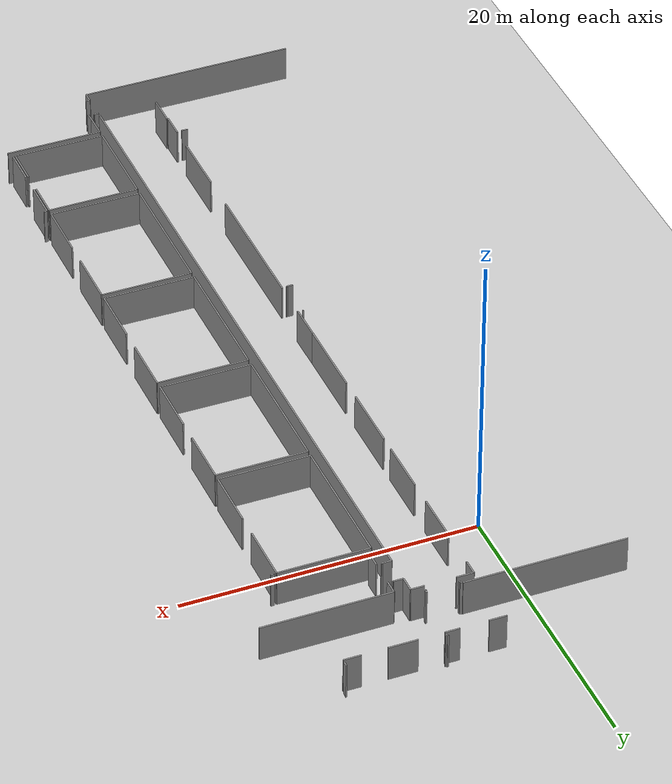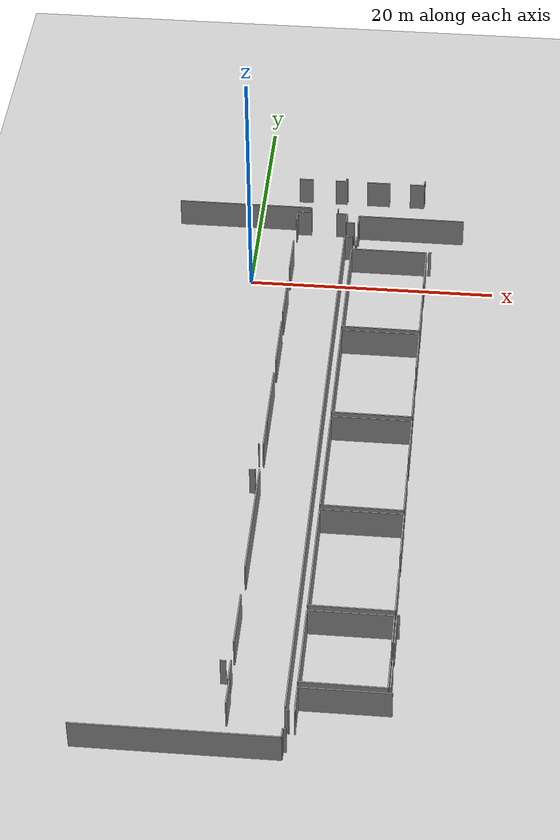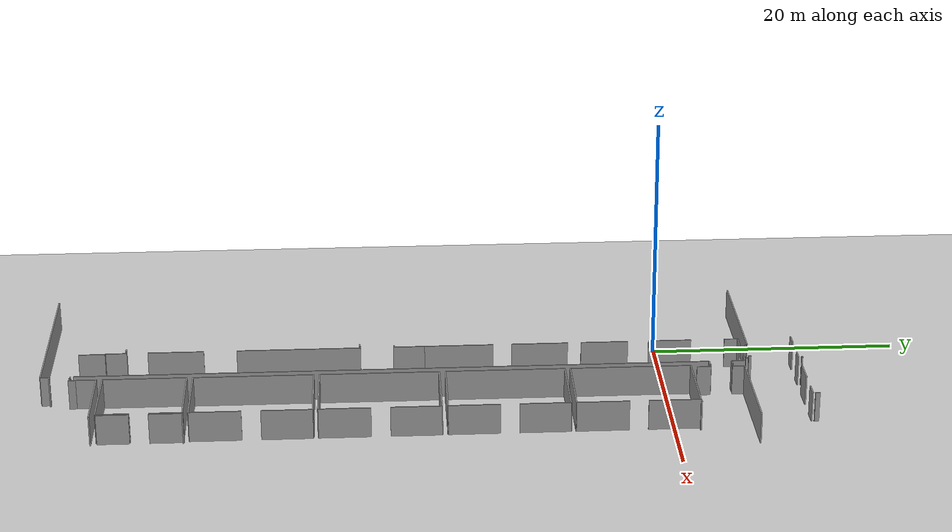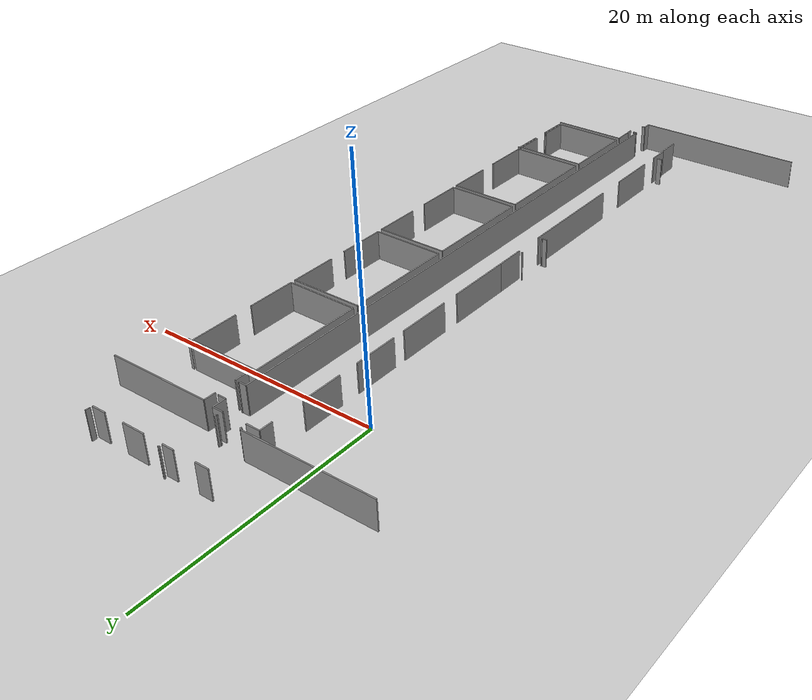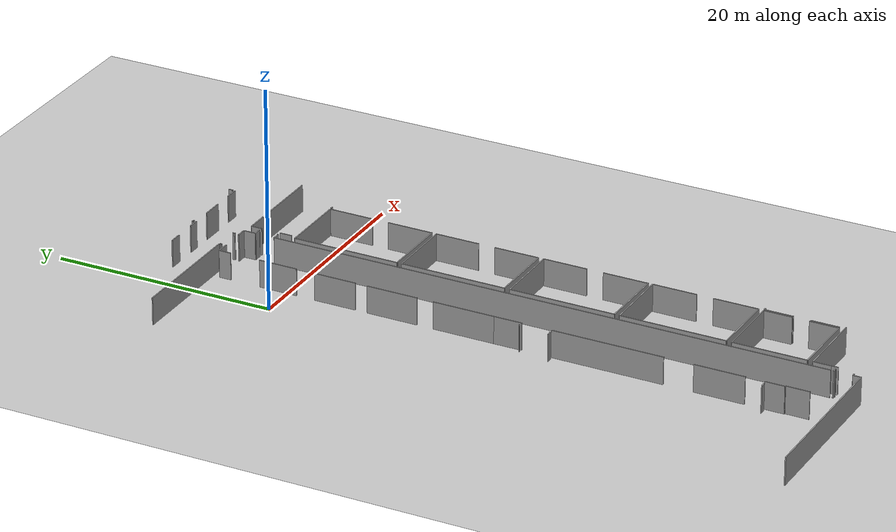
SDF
<sdf version="1.6">
 <world name="default">
  <model name="ground_plane">
   <static>1</static>
   <link name="link">
    <collision name="collision">
     <geometry><plane><normal>0 0 1</normal><size>100 100</size></plane></geometry>
     <surface><friction><ode><mu>100</mu><mu2>50</mu2></ode></friction></surface>
    </collision>
    <visual name="visual">
     <cast_shadows>0</cast_shadows>
     <geometry><plane><normal>0 0 1</normal><size>100 100</size></plane></geometry>
     <material>
      <script><uri>file://media/materials/scripts/gazebo.material</uri><name>Gazebo/Grey</name></script>
     </material>
    </visual>
   </link>
  </model>
  <model name="0510035739_A_40_1_102">
   <static>1</static>
   <link name="Wall_495">
    <collision name="Wall_495_Collision">
     <geometry><box><size>0.151049513929 0.1 2.5</size></box></geometry>
     <pose>0.0755247569644 0 1.25 0 0 0</pose>
    </collision>
    <visual name="Wall_495_Visual">
     <pose>0.0755247569644 0 1.25 0 0 0</pose>
     <geometry><box><size>0.151049513929 0.1 2.5</size></box></geometry>
     <material>
      <script><uri>file://media/materials/scripts/gazebo.material</uri><name>Gazebo/Grey</name></script>
      <ambient>1 1 1 1</ambient>
     </material>
    </visual>
    <pose>99.6763770532 -38.6009197973 0 0 0 3.14159265359</pose>
   </link>
   <link name="Wall_496">
    <collision name="Wall_496_Collision">
     <geometry><box><size>0.0957750712263 0.1 2.5</size></box></geometry>
     <pose>0.0478875356132 0 1.25 0 0 0</pose>
    </collision>
    <visual name="Wall_496_Visual">
     <pose>0.0478875356132 0 1.25 0 0 0</pose>
     <geometry><box><size>0.0957750712263 0.1 2.5</size></box></geometry>
     <material>
      <script><uri>file://media/materials/scripts/gazebo.material</uri><name>Gazebo/Grey</name></script>
      <ambient>1 1 1 1</ambient>
     </material>
    </visual>
    <pose>99.5253275393 -38.6009197973 0 0 0 1.57079632679</pose>
   </link>
   <link name="Wall_512">
    <collision name="Wall_512_Collision">
     <geometry><box><size>1.1671313201 0.1 2.5</size></box></geometry>
     <pose>0.583565660052 0 1.25 0 0 0</pose>
    </collision>
    <visual name="Wall_512_Visual">
     <pose>0.583565660052 0 1.25 0 0 0</pose>
     <geometry><box><size>1.1671313201 0.1 2.5</size></box></geometry>
     <material>
      <script><uri>file://media/materials/scripts/gazebo.material</uri><name>Gazebo/Grey</name></script>
      <ambient>1 1 1 1</ambient>
     </material>
    </visual>
    <pose>95.5330863389 -38.8681220572 0 0 0 0.0</pose>
   </link>
   <link name="Wall_513">
    <collision name="Wall_513_Collision">
     <geometry><box><size>0.99901550359 0.1 2.5</size></box></geometry>
     <pose>0.499507751795 0 1.25 0 0 0</pose>
    </collision>
    <visual name="Wall_513_Visual">
     <pose>0.499507751795 0 1.25 0 0 0</pose>
     <geometry><box><size>0.99901550359 0.1 2.5</size></box></geometry>
     <material>
      <script><uri>file://media/materials/scripts/gazebo.material</uri><name>Gazebo/Grey</name></script>
      <ambient>1 1 1 1</ambient>
     </material>
    </visual>
    <pose>98.6093510602 -38.8681220572 0 0 0 0.0</pose>
   </link>
   <link name="Wall_514">
    <collision name="Wall_514_Collision">
     <geometry><box><size>1.95676621585 0.1 2.5</size></box></geometry>
     <pose>0.978383107927 0 1.25 0 0 0</pose>
    </collision>
    <visual name="Wall_514_Visual">
     <pose>0.978383107927 0 1.25 0 0 0</pose>
     <geometry><box><size>1.95676621585 0.1 2.5</size></box></geometry>
     <material>
      <script><uri>file://media/materials/scripts/gazebo.material</uri><name>Gazebo/Grey</name></script>
      <ambient>1 1 1 1</ambient>
     </material>
    </visual>
    <pose>101.333591451 -38.8681220572 0 0 0 0.0</pose>
   </link>
   <link name="Wall_515">
    <collision name="Wall_515_Collision">
     <geometry><box><size>1.20049976247 0.1 2.5</size></box></geometry>
     <pose>0.600249881236 0 1.25 0 0 0</pose>
    </collision>
    <visual name="Wall_515_Visual">
     <pose>0.600249881236 0 1.25 0 0 0</pose>
     <geometry><box><size>1.20049976247 0.1 2.5</size></box></geometry>
     <material>
      <script><uri>file://media/materials/scripts/gazebo.material</uri><name>Gazebo/Grey</name></script>
      <ambient>1 1 1 1</ambient>
     </material>
    </visual>
    <pose>105.014308948 -38.8681220572 0 0 0 0.0</pose>
   </link>
   <link name="Wall_525">
    <collision name="Wall_525_Collision">
     <geometry><box><size>0.21676751493 0.1 2.5</size></box></geometry>
     <pose>0.108383757465 0 1.25 0 0 0</pose>
    </collision>
    <visual name="Wall_525_Visual">
     <pose>0.108383757465 0 1.25 0 0 0</pose>
     <geometry><box><size>0.21676751493 0.1 2.5</size></box></geometry>
     <material>
      <script><uri>file://media/materials/scripts/gazebo.material</uri><name>Gazebo/Grey</name></script>
      <ambient>1 1 1 1</ambient>
     </material>
    </visual>
    <pose>99.1524160917 -42.6530204172 0 0 0 -1.57079632679</pose>
   </link>
   <link name="Wall_526">
    <collision name="Wall_526_Collision">
     <geometry><box><size>0.0725954662221 0.1 2.5</size></box></geometry>
     <pose>0.0362977331111 0 1.25 0 0 0</pose>
    </collision>
    <visual name="Wall_526_Visual">
     <pose>0.0362977331111 0 1.25 0 0 0</pose>
     <geometry><box><size>0.0725954662221 0.1 2.5</size></box></geometry>
     <material>
      <script><uri>file://media/materials/scripts/gazebo.material</uri><name>Gazebo/Grey</name></script>
      <ambient>1 1 1 1</ambient>
     </material>
    </visual>
    <pose>99.1524160917 -42.8697879321 0 0 0 3.14159265359</pose>
   </link>
   <link name="Wall_527">
    <collision name="Wall_527_Collision">
     <geometry><box><size>0.11768107156 0.1 2.5</size></box></geometry>
     <pose>0.05884053578 0 1.25 0 0 0</pose>
    </collision>
    <visual name="Wall_527_Visual">
     <pose>0.05884053578 0 1.25 0 0 0</pose>
     <geometry><box><size>0.11768107156 0.1 2.5</size></box></geometry>
     <material>
      <script><uri>file://media/materials/scripts/gazebo.material</uri><name>Gazebo/Grey</name></script>
      <ambient>1 1 1 1</ambient>
     </material>
    </visual>
    <pose>96.8983905458 -42.8697879321 0 0 0 1.57079632679</pose>
   </link>
   <link name="Wall_528">
    <collision name="Wall_528_Collision">
     <geometry><box><size>0.158884824276 0.1 2.5</size></box></geometry>
     <pose>0.0794424121379 0 1.25 0 0 0</pose>
    </collision>
    <visual name="Wall_528_Visual">
     <pose>0.0794424121379 0 1.25 0 0 0</pose>
     <geometry><box><size>0.158884824276 0.1 2.5</size></box></geometry>
     <material>
      <script><uri>file://media/materials/scripts/gazebo.material</uri><name>Gazebo/Grey</name></script>
      <ambient>1 1 1 1</ambient>
     </material>
    </visual>
    <pose>96.8983905458 -42.7521068605 0 0 0 2.55359005004</pose>
   </link>
   <link name="Wall_529">
    <collision name="Wall_529_Collision">
     <geometry><box><size>11.0342618368 0.1 2.5</size></box></geometry>
     <pose>5.51713091839 0 1.25 0 0 0</pose>
    </collision>
    <visual name="Wall_529_Visual">
     <pose>5.51713091839 0 1.25 0 0 0</pose>
     <geometry><box><size>11.0342618368 0.1 2.5</size></box></geometry>
     <material>
      <script><uri>file://media/materials/scripts/gazebo.material</uri><name>Gazebo/Grey</name></script>
      <ambient>1 1 1 1</ambient>
     </material>
    </visual>
    <pose>96.766190381 -42.6639734173 0 0 0 -3.14057693335</pose>
   </link>
   <link name="Wall_576">
    <collision name="Wall_576_Collision">
     <geometry><box><size>0.0433025587991 0.1 2.5</size></box></geometry>
     <pose>0.0216512793996 0 1.25 0 0 0</pose>
    </collision>
    <visual name="Wall_576_Visual">
     <pose>0.0216512793996 0 1.25 0 0 0</pose>
     <geometry><box><size>0.0433025587991 0.1 2.5</size></box></geometry>
     <material>
      <script><uri>file://media/materials/scripts/gazebo.material</uri><name>Gazebo/Grey</name></script>
      <ambient>1 1 1 1</ambient>
     </material>
    </visual>
    <pose>106.248177153 -38.648552612 0 0 0 3.14159265359</pose>
   </link>
   <link name="Wall_577">
    <collision name="Wall_577_Collision">
     <geometry><box><size>0.35524758976 0.1 2.5</size></box></geometry>
     <pose>0.17762379488 0 1.25 0 0 0</pose>
    </collision>
    <visual name="Wall_577_Visual">
     <pose>0.17762379488 0 1.25 0 0 0</pose>
     <geometry><box><size>0.35524758976 0.1 2.5</size></box></geometry>
     <material>
      <script><uri>file://media/materials/scripts/gazebo.material</uri><name>Gazebo/Grey</name></script>
      <ambient>1 1 1 1</ambient>
     </material>
    </visual>
    <pose>106.204874595 -38.648552612 0 0 0 1.50909314419</pose>
   </link>
   <link name="Wall_608">
    <collision name="Wall_608_Collision">
     <geometry><box><size>0.0756521174314 0.1 2.5</size></box></geometry>
     <pose>0.0378260587157 0 1.25 0 0 0</pose>
    </collision>
    <visual name="Wall_608_Visual">
     <pose>0.0378260587157 0 1.25 0 0 0</pose>
     <geometry><box><size>0.0756521174314 0.1 2.5</size></box></geometry>
     <material>
      <script><uri>file://media/materials/scripts/gazebo.material</uri><name>Gazebo/Grey</name></script>
      <ambient>1 1 1 1</ambient>
     </material>
    </visual>
    <pose>95.4454623376 -71.4097402738 0 0 0 -1.57079632679</pose>
   </link>
   <link name="Wall_609">
    <collision name="Wall_609_Collision">
     <geometry><box><size>0.0860956757301 0.1 2.5</size></box></geometry>
     <pose>0.043047837865 0 1.25 0 0 0</pose>
    </collision>
    <visual name="Wall_609_Visual">
     <pose>0.043047837865 0 1.25 0 0 0</pose>
     <geometry><box><size>0.0860956757301 0.1 2.5</size></box></geometry>
     <material>
      <script><uri>file://media/materials/scripts/gazebo.material</uri><name>Gazebo/Grey</name></script>
      <ambient>1 1 1 1</ambient>
     </material>
    </visual>
    <pose>95.4454623376 -74.1755001764 0 0 0 -1.57079632679</pose>
   </link>
   <link name="Wall_610">
    <collision name="Wall_610_Collision">
     <geometry><box><size>0.434044471728 0.1 2.5</size></box></geometry>
     <pose>0.217022235864 0 1.25 0 0 0</pose>
    </collision>
    <visual name="Wall_610_Visual">
     <pose>0.217022235864 0 1.25 0 0 0</pose>
     <geometry><box><size>0.434044471728 0.1 2.5</size></box></geometry>
     <material>
      <script><uri>file://media/materials/scripts/gazebo.material</uri><name>Gazebo/Grey</name></script>
      <ambient>1 1 1 1</ambient>
     </material>
    </visual>
    <pose>95.4454623376 -74.2615958521 0 0 0 3.14159265359</pose>
   </link>
   <link name="Wall_625">
    <collision name="Wall_625_Collision">
     <geometry><box><size>0.43480863453 0.1 2.5</size></box></geometry>
     <pose>0.217404317265 0 1.25 0 0 0</pose>
    </collision>
    <visual name="Wall_625_Visual">
     <pose>0.217404317265 0 1.25 0 0 0</pose>
     <geometry><box><size>0.43480863453 0.1 2.5</size></box></geometry>
     <material>
      <script><uri>file://media/materials/scripts/gazebo.material</uri><name>Gazebo/Grey</name></script>
      <ambient>1 1 1 1</ambient>
     </material>
    </visual>
    <pose>95.4390943142 -93.1883801404 0 0 0 3.14159265359</pose>
   </link>
   <link name="Wall_630">
    <collision name="Wall_630_Collision">
     <geometry><box><size>0.291655469559 0.1 2.5</size></box></geometry>
     <pose>0.145827734779 0 1.25 0 0 0</pose>
    </collision>
    <visual name="Wall_630_Visual">
     <pose>0.145827734779 0 1.25 0 0 0</pose>
     <geometry><box><size>0.291655469559 0.1 2.5</size></box></geometry>
     <material>
      <script><uri>file://media/materials/scripts/gazebo.material</uri><name>Gazebo/Grey</name></script>
      <ambient>1 1 1 1</ambient>
     </material>
    </visual>
    <pose>99.9512209411 -97.2251975042 0 0 0 0.0</pose>
   </link>
   <link name="Wall_631">
    <collision name="Wall_631_Collision">
     <geometry><box><size>0.0914448153464 0.1 2.5</size></box></geometry>
     <pose>0.0457224076732 0 1.25 0 0 0</pose>
    </collision>
    <visual name="Wall_631_Visual">
     <pose>0.0457224076732 0 1.25 0 0 0</pose>
     <geometry><box><size>0.0914448153464 0.1 2.5</size></box></geometry>
     <material>
      <script><uri>file://media/materials/scripts/gazebo.material</uri><name>Gazebo/Grey</name></script>
      <ambient>1 1 1 1</ambient>
     </material>
    </visual>
    <pose>100.242876411 -97.2251975042 0 0 0 -1.57079632679</pose>
   </link>
   <link name="Wall_632">
    <collision name="Wall_632_Collision">
     <geometry><box><size>0.273570283237 0.1 2.5</size></box></geometry>
     <pose>0.136785141618 0 1.25 0 0 0</pose>
    </collision>
    <visual name="Wall_632_Visual">
     <pose>0.136785141618 0 1.25 0 0 0</pose>
     <geometry><box><size>0.273570283237 0.1 2.5</size></box></geometry>
     <material>
      <script><uri>file://media/materials/scripts/gazebo.material</uri><name>Gazebo/Grey</name></script>
      <ambient>1 1 1 1</ambient>
     </material>
    </visual>
    <pose>100.242876411 -98.8941290646 0 0 0 3.14159265359</pose>
   </link>
   <link name="Wall_633">
    <collision name="Wall_633_Collision">
     <geometry><box><size>0.714492220186 0.1 2.5</size></box></geometry>
     <pose>0.357246110093 0 1.25 0 0 0</pose>
    </collision>
    <visual name="Wall_633_Visual">
     <pose>0.357246110093 0 1.25 0 0 0</pose>
     <geometry><box><size>0.714492220186 0.1 2.5</size></box></geometry>
     <material>
      <script><uri>file://media/materials/scripts/gazebo.material</uri><name>Gazebo/Grey</name></script>
      <ambient>1 1 1 1</ambient>
     </material>
    </visual>
    <pose>99.9693061274 -98.8941290646 0 0 0 -1.57079632679</pose>
   </link>
   <link name="Wall_634">
    <collision name="Wall_634_Collision">
     <geometry><box><size>14.7699950865 0.1 2.5</size></box></geometry>
     <pose>7.38499754326 0 1.25 0 0 0</pose>
    </collision>
    <visual name="Wall_634_Visual">
     <pose>7.38499754326 0 1.25 0 0 0</pose>
     <geometry><box><size>14.7699950865 0.1 2.5</size></box></geometry>
     <material>
      <script><uri>file://media/materials/scripts/gazebo.material</uri><name>Gazebo/Grey</name></script>
      <ambient>1 1 1 1</ambient>
     </material>
    </visual>
    <pose>99.9693061274 -99.6086212847 0 0 0 -3.14110977012</pose>
   </link>
   <link name="Wall_635">
    <collision name="Wall_635_Collision">
     <geometry><box><size>1.61875153629 0.1 2.5</size></box></geometry>
     <pose>0.809375768143 0 1.25 0 0 0</pose>
    </collision>
    <visual name="Wall_635_Visual">
     <pose>0.809375768143 0 1.25 0 0 0</pose>
     <geometry><box><size>1.61875153629 0.1 2.5</size></box></geometry>
     <material>
      <script><uri>file://media/materials/scripts/gazebo.material</uri><name>Gazebo/Grey</name></script>
      <ambient>1 1 1 1</ambient>
     </material>
    </visual>
    <pose>100.631580556 -96.7565109855 0 0 0 1.57079632679</pose>
   </link>
   <link name="Wall_636">
    <collision name="Wall_636_Collision">
     <geometry><box><size>6.61841403105 0.1 2.5</size></box></geometry>
     <pose>3.30920701552 0 1.25 0 0 0</pose>
    </collision>
    <visual name="Wall_636_Visual">
     <pose>3.30920701552 0 1.25 0 0 0</pose>
     <geometry><box><size>6.61841403105 0.1 2.5</size></box></geometry>
     <material>
      <script><uri>file://media/materials/scripts/gazebo.material</uri><name>Gazebo/Grey</name></script>
      <ambient>1 1 1 1</ambient>
     </material>
    </visual>
    <pose>100.631580556 -95.1377594492 0 0 0 0.0</pose>
   </link>
   <link name="Wall_640">
    <collision name="Wall_640_Collision">
     <geometry><box><size>0.59507869519 0.1 2.5</size></box></geometry>
     <pose>0.297539347595 0 1.25 0 0 0</pose>
    </collision>
    <visual name="Wall_640_Visual">
     <pose>0.297539347595 0 1.25 0 0 0</pose>
     <geometry><box><size>0.59507869519 0.1 2.5</size></box></geometry>
     <material>
      <script><uri>file://media/materials/scripts/gazebo.material</uri><name>Gazebo/Grey</name></script>
      <ambient>1 1 1 1</ambient>
     </material>
    </visual>
    <pose>100.667241487 -97.3505202038 0 0 0 1.63075866411</pose>
   </link>
   <link name="Wall_641">
    <collision name="Wall_641_Collision">
     <geometry><box><size>0.231286608174 0.1 2.5</size></box></geometry>
     <pose>0.115643304087 0 1.25 0 0 0</pose>
    </collision>
    <visual name="Wall_641_Visual">
     <pose>0.115643304087 0 1.25 0 0 0</pose>
     <geometry><box><size>0.231286608174 0.1 2.5</size></box></geometry>
     <material>
      <script><uri>file://media/materials/scripts/gazebo.material</uri><name>Gazebo/Grey</name></script>
      <ambient>1 1 1 1</ambient>
     </material>
    </visual>
    <pose>107.040613979 -47.7517693553 0 0 0 0.0</pose>
   </link>
   <link name="Wall_662">
    <collision name="Wall_662_Collision">
     <geometry><box><size>2.53370913162 0.1 2.5</size></box></geometry>
     <pose>1.26685456581 0 1.25 0 0 0</pose>
    </collision>
    <visual name="Wall_662_Visual">
     <pose>1.26685456581 0 1.25 0 0 0</pose>
     <geometry><box><size>2.53370913162 0.1 2.5</size></box></geometry>
     <material>
      <script><uri>file://media/materials/scripts/gazebo.material</uri><name>Gazebo/Grey</name></script>
      <ambient>1 1 1 1</ambient>
     </material>
    </visual>
    <pose>107.05156698 -94.6430913951 0 0 0 1.57079632679</pose>
   </link>
   <link name="Wall_663">
    <collision name="Wall_663_Collision">
     <geometry><box><size>2.62489922603 0.1 2.5</size></box></geometry>
     <pose>1.31244961302 0 1.25 0 0 0</pose>
    </collision>
    <visual name="Wall_663_Visual">
     <pose>1.31244961302 0 1.25 0 0 0</pose>
     <geometry><box><size>2.62489922603 0.1 2.5</size></box></geometry>
     <material>
      <script><uri>file://media/materials/scripts/gazebo.material</uri><name>Gazebo/Grey</name></script>
      <ambient>1 1 1 1</ambient>
     </material>
    </visual>
    <pose>107.05156698 -90.5940474265 0 0 0 1.57079632679</pose>
   </link>
   <link name="Wall_664">
    <collision name="Wall_664_Collision">
     <geometry><box><size>0.224663863887 0.1 2.5</size></box></geometry>
     <pose>0.112331931944 0 1.25 0 0 0</pose>
    </collision>
    <visual name="Wall_664_Visual">
     <pose>0.112331931944 0 1.25 0 0 0</pose>
     <geometry><box><size>0.224663863887 0.1 2.5</size></box></geometry>
     <material>
      <script><uri>file://media/materials/scripts/gazebo.material</uri><name>Gazebo/Grey</name></script>
      <ambient>1 1 1 1</ambient>
     </material>
    </visual>
    <pose>107.05156698 -87.9691482005 0 0 0 0.0</pose>
   </link>
   <link name="Wall_684">
    <collision name="Wall_684_Collision">
     <geometry><box><size>1.1342723196 0.1 2.5</size></box></geometry>
     <pose>0.567136159802 0 1.25 0 0 0</pose>
    </collision>
    <visual name="Wall_684_Visual">
     <pose>0.567136159802 0 1.25 0 0 0</pose>
     <geometry><box><size>1.1342723196 0.1 2.5</size></box></geometry>
     <material>
      <script><uri>file://media/materials/scripts/gazebo.material</uri><name>Gazebo/Grey</name></script>
      <ambient>1 1 1 1</ambient>
     </material>
    </visual>
    <pose>100.961953608 -47.3113568602 0 0 0 1.57079632679</pose>
   </link>
   <link name="Wall_685">
    <collision name="Wall_685_Collision">
     <geometry><box><size>0.99595885238 0.1 2.5</size></box></geometry>
     <pose>0.49797942619 0 1.25 0 0 0</pose>
    </collision>
    <visual name="Wall_685_Visual">
     <pose>0.49797942619 0 1.25 0 0 0</pose>
     <geometry><box><size>0.99595885238 0.1 2.5</size></box></geometry>
     <material>
      <script><uri>file://media/materials/scripts/gazebo.material</uri><name>Gazebo/Grey</name></script>
      <ambient>1 1 1 1</ambient>
     </material>
    </visual>
    <pose>100.961953608 -44.4518596539 0 0 0 1.57079632679</pose>
   </link>
   <link name="Wall_686">
    <collision name="Wall_686_Collision">
     <geometry><box><size>8.79831578518 0.1 2.5</size></box></geometry>
     <pose>4.39915789259 0 1.25 0 0 0</pose>
    </collision>
    <visual name="Wall_686_Visual">
     <pose>4.39915789259 0 1.25 0 0 0</pose>
     <geometry><box><size>8.79831578518 0.1 2.5</size></box></geometry>
     <material>
      <script><uri>file://media/materials/scripts/gazebo.material</uri><name>Gazebo/Grey</name></script>
      <ambient>1 1 1 1</ambient>
     </material>
    </visual>
    <pose>100.961953608 -43.4559008015 0 0 0 0.0</pose>
   </link>
   <link name="Wall_693">
    <collision name="Wall_693_Collision">
     <geometry><box><size>5.59800196899 0.1 2.5</size></box></geometry>
     <pose>2.7990009845 0 1.25 0 0 0</pose>
    </collision>
    <visual name="Wall_693_Visual">
     <pose>2.7990009845 0 1.25 0 0 0</pose>
     <geometry><box><size>5.59800196899 0.1 2.5</size></box></geometry>
     <material>
      <script><uri>file://media/materials/scripts/gazebo.material</uri><name>Gazebo/Grey</name></script>
      <ambient>1 1 1 1</ambient>
     </material>
    </visual>
    <pose>95.7674295983 -68.9743534227 0 0 0 1.57079632679</pose>
   </link>
   <link name="Wall_694">
    <collision name="Wall_694_Collision">
     <geometry><box><size>4.61477916332 0.1 2.5</size></box></geometry>
     <pose>2.30738958166 0 1.25 0 0 0</pose>
    </collision>
    <visual name="Wall_694_Visual">
     <pose>2.30738958166 0 1.25 0 0 0</pose>
     <geometry><box><size>4.61477916332 0.1 2.5</size></box></geometry>
     <material>
      <script><uri>file://media/materials/scripts/gazebo.material</uri><name>Gazebo/Grey</name></script>
      <ambient>1 1 1 1</ambient>
     </material>
    </visual>
    <pose>95.7674295983 -61.8829226171 0 0 0 1.57079632679</pose>
   </link>
   <link name="Wall_695">
    <collision name="Wall_695_Collision">
     <geometry><box><size>3.85545605873 0.1 2.5</size></box></geometry>
     <pose>1.92772802936 0 1.25 0 0 0</pose>
    </collision>
    <visual name="Wall_695_Visual">
     <pose>1.92772802936 0 1.25 0 0 0</pose>
     <geometry><box><size>3.85545605873 0.1 2.5</size></box></geometry>
     <material>
      <script><uri>file://media/materials/scripts/gazebo.material</uri><name>Gazebo/Grey</name></script>
      <ambient>1 1 1 1</ambient>
     </material>
    </visual>
    <pose>95.7674295983 -56.1837964372 0 0 0 1.57079632679</pose>
   </link>
   <link name="Wall_696">
    <collision name="Wall_696_Collision">
     <geometry><box><size>3.50750726273 0.1 2.5</size></box></geometry>
     <pose>1.75375363137 0 1.25 0 0 0</pose>
    </collision>
    <visual name="Wall_696_Visual">
     <pose>1.75375363137 0 1.25 0 0 0</pose>
     <geometry><box><size>3.50750726273 0.1 2.5</size></box></geometry>
     <material>
      <script><uri>file://media/materials/scripts/gazebo.material</uri><name>Gazebo/Grey</name></script>
      <ambient>1 1 1 1</ambient>
     </material>
    </visual>
    <pose>95.7674295983 -50.6324083992 0 0 0 1.57079632679</pose>
   </link>
   <link name="Wall_697">
    <collision name="Wall_697_Collision">
     <geometry><box><size>1.09504529575 0.1 2.5</size></box></geometry>
     <pose>0.547522647875 0 1.25 0 0 0</pose>
    </collision>
    <visual name="Wall_697_Visual">
     <pose>0.547522647875 0 1.25 0 0 0</pose>
     <geometry><box><size>1.09504529575 0.1 2.5</size></box></geometry>
     <material>
      <script><uri>file://media/materials/scripts/gazebo.material</uri><name>Gazebo/Grey</name></script>
      <ambient>1 1 1 1</ambient>
     </material>
    </visual>
    <pose>95.7674295983 -44.3736603271 0 0 0 1.57079632679</pose>
   </link>
   <link name="Wall_698">
    <collision name="Wall_698_Collision">
     <geometry><box><size>1.16891436664 0.1 2.5</size></box></geometry>
     <pose>0.584457183321 0 1.25 0 0 0</pose>
    </collision>
    <visual name="Wall_698_Visual">
     <pose>0.584457183321 0 1.25 0 0 0</pose>
     <geometry><box><size>1.16891436664 0.1 2.5</size></box></geometry>
     <material>
      <script><uri>file://media/materials/scripts/gazebo.material</uri><name>Gazebo/Grey</name></script>
      <ambient>1 1 1 1</ambient>
     </material>
    </visual>
    <pose>95.7674295983 -43.2786150313 0 0 0 0.0</pose>
   </link>
   <link name="Wall_699">
    <collision name="Wall_699_Collision">
     <geometry><box><size>0.919797293081 0.1 2.5</size></box></geometry>
     <pose>0.45989864654 0 1.25 0 0 0</pose>
    </collision>
    <visual name="Wall_699_Visual">
     <pose>0.45989864654 0 1.25 0 0 0</pose>
     <geometry><box><size>0.919797293081 0.1 2.5</size></box></geometry>
     <material>
      <script><uri>file://media/materials/scripts/gazebo.material</uri><name>Gazebo/Grey</name></script>
      <ambient>1 1 1 1</ambient>
     </material>
    </visual>
    <pose>99.0291311596 -43.2786150313 0 0 0 0.0</pose>
   </link>
   <link name="Wall_700">
    <collision name="Wall_700_Collision">
     <geometry><box><size>1.10090387723 0.1 2.5</size></box></geometry>
     <pose>0.550451938617 0 1.25 0 0 0</pose>
    </collision>
    <visual name="Wall_700_Visual">
     <pose>0.550451938617 0 1.25 0 0 0</pose>
     <geometry><box><size>1.10090387723 0.1 2.5</size></box></geometry>
     <material>
      <script><uri>file://media/materials/scripts/gazebo.material</uri><name>Gazebo/Grey</name></script>
      <ambient>1 1 1 1</ambient>
     </material>
    </visual>
    <pose>99.9489284527 -43.2786150313 0 0 0 -1.57079632679</pose>
   </link>
   <link name="Wall_701">
    <collision name="Wall_701_Collision">
     <geometry><box><size>0.665076358968 0.1 2.5</size></box></geometry>
     <pose>0.332538179484 0 1.25 0 0 0</pose>
    </collision>
    <visual name="Wall_701_Visual">
     <pose>0.332538179484 0 1.25 0 0 0</pose>
     <geometry><box><size>0.665076358968 0.1 2.5</size></box></geometry>
     <material>
      <script><uri>file://media/materials/scripts/gazebo.material</uri><name>Gazebo/Grey</name></script>
      <ambient>1 1 1 1</ambient>
     </material>
    </visual>
    <pose>99.9489284527 -44.3795189086 0 0 0 0.0</pose>
   </link>
   <link name="Wall_702">
    <collision name="Wall_702_Collision">
     <geometry><box><size>0.045340326272 0.1 2.5</size></box></geometry>
     <pose>0.022670163136 0 1.25 0 0 0</pose>
    </collision>
    <visual name="Wall_702_Visual">
     <pose>0.022670163136 0 1.25 0 0 0</pose>
     <geometry><box><size>0.045340326272 0.1 2.5</size></box></geometry>
     <material>
      <script><uri>file://media/materials/scripts/gazebo.material</uri><name>Gazebo/Grey</name></script>
      <ambient>1 1 1 1</ambient>
     </material>
    </visual>
    <pose>100.614004812 -44.3795189086 0 0 0 -1.57079632679</pose>
   </link>
   <link name="Wall_703">
    <collision name="Wall_703_Collision">
     <geometry><box><size>0.09042593161 0.1 2.5</size></box></geometry>
     <pose>0.045212965805 0 1.25 0 0 0</pose>
    </collision>
    <visual name="Wall_703_Visual">
     <pose>0.045212965805 0 1.25 0 0 0</pose>
     <geometry><box><size>0.09042593161 0.1 2.5</size></box></geometry>
     <material>
      <script><uri>file://media/materials/scripts/gazebo.material</uri><name>Gazebo/Grey</name></script>
      <ambient>1 1 1 1</ambient>
     </material>
    </visual>
    <pose>100.614004812 -46.1047437953 0 0 0 -1.57079632679</pose>
   </link>
   <link name="Wall_704">
    <collision name="Wall_704_Collision">
     <geometry><box><size>0.65590640534 0.1 2.5</size></box></geometry>
     <pose>0.32795320267 0 1.25 0 0 0</pose>
    </collision>
    <visual name="Wall_704_Visual">
     <pose>0.32795320267 0 1.25 0 0 0</pose>
     <geometry><box><size>0.65590640534 0.1 2.5</size></box></geometry>
     <material>
      <script><uri>file://media/materials/scripts/gazebo.material</uri><name>Gazebo/Grey</name></script>
      <ambient>1 1 1 1</ambient>
     </material>
    </visual>
    <pose>100.614004812 -46.1951697269 0 0 0 3.14159265359</pose>
   </link>
   <link name="Wall_705">
    <collision name="Wall_705_Collision">
     <geometry><box><size>50.7967034017 0.1 2.5</size></box></geometry>
     <pose>25.3983517008 0 1.25 0 0 0</pose>
    </collision>
    <visual name="Wall_705_Visual">
     <pose>25.3983517008 0 1.25 0 0 0</pose>
     <geometry><box><size>50.7967034017 0.1 2.5</size></box></geometry>
     <material>
      <script><uri>file://media/materials/scripts/gazebo.material</uri><name>Gazebo/Grey</name></script>
      <ambient>1 1 1 1</ambient>
     </material>
    </visual>
    <pose>99.9580984063 -46.1951697269 0 0 0 -1.57079632679</pose>
   </link>
   <link name="Wall_706">
    <collision name="Wall_706_Collision">
     <geometry><box><size>2.13812752094 0.1 2.5</size></box></geometry>
     <pose>1.06906376047 0 1.25 0 0 0</pose>
    </collision>
    <visual name="Wall_706_Visual">
     <pose>1.06906376047 0 1.25 0 0 0</pose>
     <geometry><box><size>2.13812752094 0.1 2.5</size></box></geometry>
     <material>
      <script><uri>file://media/materials/scripts/gazebo.material</uri><name>Gazebo/Grey</name></script>
      <ambient>1 1 1 1</ambient>
     </material>
    </visual>
    <pose>95.857600809 -96.9918731286 0 0 0 1.57079632679</pose>
   </link>
   <link name="Wall_707">
    <collision name="Wall_707_Collision">
     <geometry><box><size>0.0766710011679 0.1 2.5</size></box></geometry>
     <pose>0.0383355005839 0 1.25 0 0 0</pose>
    </collision>
    <visual name="Wall_707_Visual">
     <pose>0.0383355005839 0 1.25 0 0 0</pose>
     <geometry><box><size>0.0766710011679 0.1 2.5</size></box></geometry>
     <material>
      <script><uri>file://media/materials/scripts/gazebo.material</uri><name>Gazebo/Grey</name></script>
      <ambient>1 1 1 1</ambient>
     </material>
    </visual>
    <pose>95.857600809 -94.8537456077 0 0 0 3.14159265359</pose>
   </link>
   <link name="Wall_708">
    <collision name="Wall_708_Collision">
     <geometry><box><size>1.75757444538 0.1 2.5</size></box></geometry>
     <pose>0.878787222689 0 1.25 0 0 0</pose>
    </collision>
    <visual name="Wall_708_Visual">
     <pose>0.878787222689 0 1.25 0 0 0</pose>
     <geometry><box><size>1.75757444538 0.1 2.5</size></box></geometry>
     <material>
      <script><uri>file://media/materials/scripts/gazebo.material</uri><name>Gazebo/Grey</name></script>
      <ambient>1 1 1 1</ambient>
     </material>
    </visual>
    <pose>95.7809298078 -94.8537456077 0 0 0 1.57079632679</pose>
   </link>
   <link name="Wall_709">
    <collision name="Wall_709_Collision">
     <geometry><box><size>4.52613627825 0.1 2.5</size></box></geometry>
     <pose>2.26306813912 0 1.25 0 0 0</pose>
    </collision>
    <visual name="Wall_709_Visual">
     <pose>2.26306813912 0 1.25 0 0 0</pose>
     <geometry><box><size>4.52613627825 0.1 2.5</size></box></geometry>
     <material>
      <script><uri>file://media/materials/scripts/gazebo.material</uri><name>Gazebo/Grey</name></script>
      <ambient>1 1 1 1</ambient>
     </material>
    </visual>
    <pose>95.7809298078 -91.4122110669 0 0 0 1.57079632679</pose>
   </link>
   <link name="Wall_710">
    <collision name="Wall_710_Collision">
     <geometry><box><size>10.0416086646 0.1 2.5</size></box></geometry>
     <pose>5.02080433229 0 1.25 0 0 0</pose>
    </collision>
    <visual name="Wall_710_Visual">
     <pose>5.02080433229 0 1.25 0 0 0</pose>
     <geometry><box><size>10.0416086646 0.1 2.5</size></box></geometry>
     <material>
      <script><uri>file://media/materials/scripts/gazebo.material</uri><name>Gazebo/Grey</name></script>
      <ambient>1 1 1 1</ambient>
     </material>
    </visual>
    <pose>95.7809298078 -84.2267882365 0 0 0 1.57079632679</pose>
   </link>
   <link name="Wall_711">
    <collision name="Wall_711_Collision">
     <geometry><box><size>2.53909416139 0.1 2.5</size></box></geometry>
     <pose>1.26954708069 0 1.25 0 0 0</pose>
    </collision>
    <visual name="Wall_711_Visual">
     <pose>1.26954708069 0 1.25 0 0 0</pose>
     <geometry><box><size>2.53909416139 0.1 2.5</size></box></geometry>
     <material>
      <script><uri>file://media/materials/scripts/gazebo.material</uri><name>Gazebo/Grey</name></script>
      <ambient>1 1 1 1</ambient>
     </material>
    </visual>
    <pose>95.7809298078 -71.513411694 0 0 0 1.57611329114</pose>
   </link>
   <link name="Wall_721">
    <collision name="Wall_721_Collision">
     <geometry><box><size>9.68525407776 0.1 2.5</size></box></geometry>
     <pose>4.84262703888 0 1.25 0 0 0</pose>
    </collision>
    <visual name="Wall_721_Visual">
     <pose>4.84262703888 0 1.25 0 0 0</pose>
     <geometry><box><size>9.68525407776 0.1 2.5</size></box></geometry>
     <material>
      <script><uri>file://media/materials/scripts/gazebo.material</uri><name>Gazebo/Grey</name></script>
      <ambient>1 1 1 1</ambient>
     </material>
    </visual>
    <pose>100.653486556 -57.4645332939 0 0 0 1.57079632679</pose>
   </link>
   <link name="Wall_722">
    <collision name="Wall_722_Collision">
     <geometry><box><size>6.21926632729 0.1 2.5</size></box></geometry>
     <pose>3.10963316365 0 1.25 0 0 0</pose>
    </collision>
    <visual name="Wall_722_Visual">
     <pose>3.10963316365 0 1.25 0 0 0</pose>
     <geometry><box><size>6.21926632729 0.1 2.5</size></box></geometry>
     <material>
      <script><uri>file://media/materials/scripts/gazebo.material</uri><name>Gazebo/Grey</name></script>
      <ambient>1 1 1 1</ambient>
     </material>
    </visual>
    <pose>100.653486556 -47.7792792162 0 0 0 0.0</pose>
   </link>
   <link name="Wall_723">
    <collision name="Wall_723_Collision">
     <geometry><box><size>4.07782743421 0.1 2.5</size></box></geometry>
     <pose>2.0389137171 0 1.25 0 0 0</pose>
    </collision>
    <visual name="Wall_723_Visual">
     <pose>2.0389137171 0 1.25 0 0 0</pose>
     <geometry><box><size>4.07782743421 0.1 2.5</size></box></geometry>
     <material>
      <script><uri>file://media/materials/scripts/gazebo.material</uri><name>Gazebo/Grey</name></script>
      <ambient>1 1 1 1</ambient>
     </material>
    </visual>
    <pose>106.872752884 -47.7792792162 0 0 0 -1.57079632679</pose>
   </link>
   <link name="Wall_724">
    <collision name="Wall_724_Collision">
     <geometry><box><size>4.1516965051 0.1 2.5</size></box></geometry>
     <pose>2.07584825255 0 1.25 0 0 0</pose>
    </collision>
    <visual name="Wall_724_Visual">
     <pose>2.07584825255 0 1.25 0 0 0</pose>
     <geometry><box><size>4.1516965051 0.1 2.5</size></box></geometry>
     <material>
      <script><uri>file://media/materials/scripts/gazebo.material</uri><name>Gazebo/Grey</name></script>
      <ambient>1 1 1 1</ambient>
     </material>
    </visual>
    <pose>106.872752884 -53.3459505103 0 0 0 -1.57079632679</pose>
   </link>
   <link name="Wall_725">
    <collision name="Wall_725_Collision">
     <geometry><box><size>6.21935448164 0.1 2.5</size></box></geometry>
     <pose>3.10967724082 0 1.25 0 0 0</pose>
    </collision>
    <visual name="Wall_725_Visual">
     <pose>3.10967724082 0 1.25 0 0 0</pose>
     <geometry><box><size>6.21935448164 0.1 2.5</size></box></geometry>
     <material>
      <script><uri>file://media/materials/scripts/gazebo.material</uri><name>Gazebo/Grey</name></script>
      <ambient>1 1 1 1</ambient>
     </material>
    </visual>
    <pose>106.872752884 -57.4976470154 0 0 0 3.13626832645</pose>
   </link>
   <link name="Wall_726">
    <collision name="Wall_726_Collision">
     <geometry><box><size>9.54617644774 0.1 2.5</size></box></geometry>
     <pose>4.77308822387 0 1.25 0 0 0</pose>
    </collision>
    <visual name="Wall_726_Visual">
     <pose>4.77308822387 0 1.25 0 0 0</pose>
     <geometry><box><size>9.54617644774 0.1 2.5</size></box></geometry>
     <material>
      <script><uri>file://media/materials/scripts/gazebo.material</uri><name>Gazebo/Grey</name></script>
      <ambient>1 1 1 1</ambient>
     </material>
    </visual>
    <pose>100.647118533 -67.4567260973 0 0 0 1.57079632679</pose>
   </link>
   <link name="Wall_727">
    <collision name="Wall_727_Collision">
     <geometry><box><size>6.22563435065 0.1 2.5</size></box></geometry>
     <pose>3.11281717532 0 1.25 0 0 0</pose>
    </collision>
    <visual name="Wall_727_Visual">
     <pose>3.11281717532 0 1.25 0 0 0</pose>
     <geometry><box><size>6.22563435065 0.1 2.5</size></box></geometry>
     <material>
      <script><uri>file://media/materials/scripts/gazebo.material</uri><name>Gazebo/Grey</name></script>
      <ambient>1 1 1 1</ambient>
     </material>
    </visual>
    <pose>100.647118533 -57.9105496496 0 0 0 0.0</pose>
   </link>
   <link name="Wall_728">
    <collision name="Wall_728_Collision">
     <geometry><box><size>4.01414720068 0.1 2.5</size></box></geometry>
     <pose>2.00707360034 0 1.25 0 0 0</pose>
    </collision>
    <visual name="Wall_728_Visual">
     <pose>2.00707360034 0 1.25 0 0 0</pose>
     <geometry><box><size>4.01414720068 0.1 2.5</size></box></geometry>
     <material>
      <script><uri>file://media/materials/scripts/gazebo.material</uri><name>Gazebo/Grey</name></script>
      <ambient>1 1 1 1</ambient>
     </material>
    </visual>
    <pose>106.872752884 -57.9105496496 0 0 0 -1.57079632679</pose>
   </link>
   <link name="Wall_729">
    <collision name="Wall_729_Collision">
     <geometry><box><size>4.08292185289 0.1 2.5</size></box></geometry>
     <pose>2.04146092645 0 1.25 0 0 0</pose>
    </collision>
    <visual name="Wall_729_Visual">
     <pose>2.04146092645 0 1.25 0 0 0</pose>
     <geometry><box><size>4.08292185289 0.1 2.5</size></box></geometry>
     <material>
      <script><uri>file://media/materials/scripts/gazebo.material</uri><name>Gazebo/Grey</name></script>
      <ambient>1 1 1 1</ambient>
     </material>
    </visual>
    <pose>106.872752884 -63.4069179658 0 0 0 -1.57079632679</pose>
   </link>
   <link name="Wall_730">
    <collision name="Wall_730_Collision">
     <geometry><box><size>6.22572241483 0.1 2.5</size></box></geometry>
     <pose>3.11286120741 0 1.25 0 0 0</pose>
    </collision>
    <visual name="Wall_730_Visual">
     <pose>3.11286120741 0 1.25 0 0 0</pose>
     <geometry><box><size>6.22572241483 0.1 2.5</size></box></geometry>
     <material>
      <script><uri>file://media/materials/scripts/gazebo.material</uri><name>Gazebo/Grey</name></script>
      <ambient>1 1 1 1</ambient>
     </material>
    </visual>
    <pose>106.872752884 -67.4898398187 0 0 0 3.13627377244</pose>
   </link>
   <link name="Wall_731">
    <collision name="Wall_731_Collision">
     <geometry><box><size>9.54286507559 0.1 2.5</size></box></geometry>
     <pose>4.7714325378 0 1.25 0 0 0</pose>
    </collision>
    <visual name="Wall_731_Visual">
     <pose>4.7714325378 0 1.25 0 0 0</pose>
     <geometry><box><size>9.54286507559 0.1 2.5</size></box></geometry>
     <material>
      <script><uri>file://media/materials/scripts/gazebo.material</uri><name>Gazebo/Grey</name></script>
      <ambient>1 1 1 1</ambient>
     </material>
    </visual>
    <pose>100.653486556 -77.4960422735 0 0 0 1.57079632679</pose>
   </link>
   <link name="Wall_732">
    <collision name="Wall_732_Collision">
     <geometry><box><size>6.24448369977 0.1 2.5</size></box></geometry>
     <pose>3.12224184989 0 1.25 0 0 0</pose>
    </collision>
    <visual name="Wall_732_Visual">
     <pose>3.12224184989 0 1.25 0 0 0</pose>
     <geometry><box><size>6.24448369977 0.1 2.5</size></box></geometry>
     <material>
      <script><uri>file://media/materials/scripts/gazebo.material</uri><name>Gazebo/Grey</name></script>
      <ambient>1 1 1 1</ambient>
     </material>
    </visual>
    <pose>100.653486556 -67.9531771979 0 0 0 0.0</pose>
   </link>
   <link name="Wall_733">
    <collision name="Wall_733_Collision">
     <geometry><box><size>4.01032638667 0.1 2.5</size></box></geometry>
     <pose>2.00516319333 0 1.25 0 0 0</pose>
    </collision>
    <visual name="Wall_733_Visual">
     <pose>2.00516319333 0 1.25 0 0 0</pose>
     <geometry><box><size>4.01032638667 0.1 2.5</size></box></geometry>
     <material>
      <script><uri>file://media/materials/scripts/gazebo.material</uri><name>Gazebo/Grey</name></script>
      <ambient>1 1 1 1</ambient>
     </material>
    </visual>
    <pose>106.897970256 -67.9531771979 0 0 0 -1.57079632679</pose>
   </link>
   <link name="Wall_734">
    <collision name="Wall_734_Collision">
     <geometry><box><size>4.1068656207 0.1 2.5</size></box></geometry>
     <pose>2.05343281035 0 1.25 0 0 0</pose>
    </collision>
    <visual name="Wall_734_Visual">
     <pose>2.05343281035 0 1.25 0 0 0</pose>
     <geometry><box><size>4.1068656207 0.1 2.5</size></box></geometry>
     <material>
      <script><uri>file://media/materials/scripts/gazebo.material</uri><name>Gazebo/Grey</name></script>
      <ambient>1 1 1 1</ambient>
     </material>
    </visual>
    <pose>106.897970256 -73.4571871422 0 0 0 -1.57079632679</pose>
   </link>
   <link name="Wall_735">
    <collision name="Wall_735_Collision">
     <geometry><box><size>6.24485404981 0.1 2.5</size></box></geometry>
     <pose>3.1224270249 0 1.25 0 0 0</pose>
    </collision>
    <visual name="Wall_735_Visual">
     <pose>3.1224270249 0 1.25 0 0 0</pose>
     <geometry><box><size>6.24485404981 0.1 2.5</size></box></geometry>
     <material>
      <script><uri>file://media/materials/scripts/gazebo.material</uri><name>Gazebo/Grey</name></script>
      <ambient>1 1 1 1</ambient>
     </material>
    </visual>
    <pose>106.897970256 -77.5640527629 0 0 0 3.13070179316</pose>
   </link>
   <link name="Wall_736">
    <collision name="Wall_736_Collision">
     <geometry><box><size>9.54923309895 0.1 2.5</size></box></geometry>
     <pose>4.77461654947 0 1.25 0 0 0</pose>
    </collision>
    <visual name="Wall_736_Visual">
     <pose>4.77461654947 0 1.25 0 0 0</pose>
     <geometry><box><size>9.54923309895 0.1 2.5</size></box></geometry>
     <material>
      <script><uri>file://media/materials/scripts/gazebo.material</uri><name>Gazebo/Grey</name></script>
      <ambient>1 1 1 1</ambient>
     </material>
    </visual>
    <pose>100.654760161 -87.5065749841 0 0 0 1.57079632679</pose>
   </link>
   <link name="Wall_737">
    <collision name="Wall_737_Collision">
     <geometry><box><size>6.26919163038 0.1 2.5</size></box></geometry>
     <pose>3.13459581519 0 1.25 0 0 0</pose>
    </collision>
    <visual name="Wall_737_Visual">
     <pose>3.13459581519 0 1.25 0 0 0</pose>
     <geometry><box><size>6.26919163038 0.1 2.5</size></box></geometry>
     <material>
      <script><uri>file://media/materials/scripts/gazebo.material</uri><name>Gazebo/Grey</name></script>
      <ambient>1 1 1 1</ambient>
     </material>
    </visual>
    <pose>100.654760161 -77.9573418852 0 0 0 0.0</pose>
   </link>
   <link name="Wall_738">
    <collision name="Wall_738_Collision">
     <geometry><box><size>4.01975106123 0.1 2.5</size></box></geometry>
     <pose>2.00987553062 0 1.25 0 0 0</pose>
    </collision>
    <visual name="Wall_738_Visual">
     <pose>2.00987553062 0 1.25 0 0 0</pose>
     <geometry><box><size>4.01975106123 0.1 2.5</size></box></geometry>
     <material>
      <script><uri>file://media/materials/scripts/gazebo.material</uri><name>Gazebo/Grey</name></script>
      <ambient>1 1 1 1</ambient>
     </material>
    </visual>
    <pose>106.923951792 -77.9573418852 0 0 0 -1.57079632679</pose>
   </link>
   <link name="Wall_739">
    <collision name="Wall_739_Collision">
     <geometry><box><size>4.07757271327 0.1 2.5</size></box></geometry>
     <pose>2.03878635664 0 1.25 0 0 0</pose>
    </collision>
    <visual name="Wall_739_Visual">
     <pose>2.03878635664 0 1.25 0 0 0</pose>
     <geometry><box><size>4.07757271327 0.1 2.5</size></box></geometry>
     <material>
      <script><uri>file://media/materials/scripts/gazebo.material</uri><name>Gazebo/Grey</name></script>
      <ambient>1 1 1 1</ambient>
     </material>
    </visual>
    <pose>106.923951792 -83.467210411 0 0 0 -1.57079632679</pose>
   </link>
   <link name="Wall_740">
    <collision name="Wall_740_Collision">
     <geometry><box><size>6.26930806073 0.1 2.5</size></box></geometry>
     <pose>3.13465403037 0 1.25 0 0 0</pose>
    </collision>
    <visual name="Wall_740_Visual">
     <pose>3.13465403037 0 1.25 0 0 0</pose>
     <geometry><box><size>6.26930806073 0.1 2.5</size></box></geometry>
     <material>
      <script><uri>file://media/materials/scripts/gazebo.material</uri><name>Gazebo/Grey</name></script>
      <ambient>1 1 1 1</ambient>
     </material>
    </visual>
    <pose>106.923951792 -87.5447831242 0 0 0 3.13549814104</pose>
   </link>
   <link name="Wall_741">
    <collision name="Wall_741_Collision">
     <geometry><box><size>6.64694277567 0.1 2.5</size></box></geometry>
     <pose>3.32347138783 0 1.25 0 0 0</pose>
    </collision>
    <visual name="Wall_741_Visual">
     <pose>3.32347138783 0 1.25 0 0 0</pose>
     <geometry><box><size>6.64694277567 0.1 2.5</size></box></geometry>
     <material>
      <script><uri>file://media/materials/scripts/gazebo.material</uri><name>Gazebo/Grey</name></script>
      <ambient>1 1 1 1</ambient>
     </material>
    </visual>
    <pose>100.63259944 -94.647421651 0 0 0 1.57079632679</pose>
   </link>
   <link name="Wall_742">
    <collision name="Wall_742_Collision">
     <geometry><box><size>6.2528894906 0.1 2.5</size></box></geometry>
     <pose>3.1264447453 0 1.25 0 0 0</pose>
    </collision>
    <visual name="Wall_742_Visual">
     <pose>3.1264447453 0 1.25 0 0 0</pose>
     <geometry><box><size>6.2528894906 0.1 2.5</size></box></geometry>
     <material>
      <script><uri>file://media/materials/scripts/gazebo.material</uri><name>Gazebo/Grey</name></script>
      <ambient>1 1 1 1</ambient>
     </material>
    </visual>
    <pose>100.63259944 -88.0004788754 0 0 0 0.0</pose>
   </link>
   <link name="Wall_743">
    <collision name="Wall_743_Collision">
     <geometry><box><size>2.55637929475 0.1 2.5</size></box></geometry>
     <pose>1.27818964738 0 1.25 0 0 0</pose>
    </collision>
    <visual name="Wall_743_Visual">
     <pose>1.27818964738 0 1.25 0 0 0</pose>
     <geometry><box><size>2.55637929475 0.1 2.5</size></box></geometry>
     <material>
      <script><uri>file://media/materials/scripts/gazebo.material</uri><name>Gazebo/Grey</name></script>
      <ambient>1 1 1 1</ambient>
     </material>
    </visual>
    <pose>106.88548893 -88.0004788754 0 0 0 -1.57079632679</pose>
   </link>
   <link name="Wall_744">
    <collision name="Wall_744_Collision">
     <geometry><box><size>2.63457862153 0.1 2.5</size></box></geometry>
     <pose>1.31728931076 0 1.25 0 0 0</pose>
    </collision>
    <visual name="Wall_744_Visual">
     <pose>1.31728931076 0 1.25 0 0 0</pose>
     <geometry><box><size>2.63457862153 0.1 2.5</size></box></geometry>
     <material>
      <script><uri>file://media/materials/scripts/gazebo.material</uri><name>Gazebo/Grey</name></script>
      <ambient>1 1 1 1</ambient>
     </material>
    </visual>
    <pose>106.88548893 -92.0564003092 0 0 0 -1.57079632679</pose>
   </link>
   <link name="Wall_745">
    <collision name="Wall_745_Collision">
     <geometry><box><size>6.25304119755 0.1 2.5</size></box></geometry>
     <pose>3.12652059877 0 1.25 0 0 0</pose>
    </collision>
    <visual name="Wall_745_Visual">
     <pose>3.12652059877 0 1.25 0 0 0</pose>
     <geometry><box><size>6.25304119755 0.1 2.5</size></box></geometry>
     <material>
      <script><uri>file://media/materials/scripts/gazebo.material</uri><name>Gazebo/Grey</name></script>
      <ambient>1 1 1 1</ambient>
     </material>
    </visual>
    <pose>106.88548893 -94.6909789308 0 0 0 3.13462682199</pose>
   </link>
   <pose>-92.5 49.8157534709 0 0 0 0</pose>
  </model>
 </world>
</sdf>
